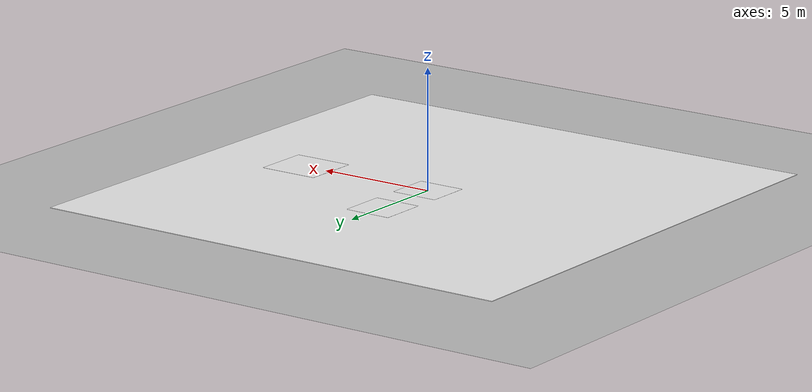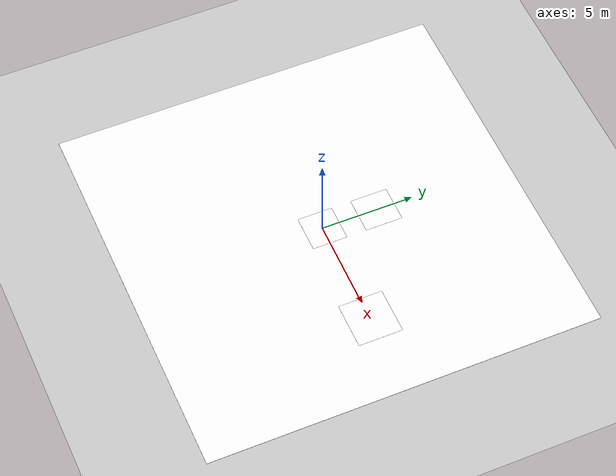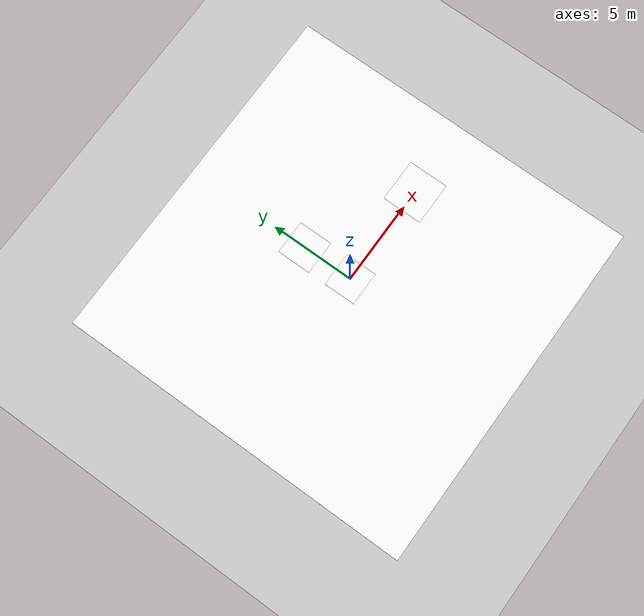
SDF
<sdf version='1.10'>
  <world name='empty_world'>
    <physics name='1ms' type='ignored'>
      <max_step_size>0.001</max_step_size>
      <real_time_factor>1</real_time_factor>
      <real_time_update_rate>1000</real_time_update_rate>
    </physics>
    <plugin name='gz::sim::systems::Physics' filename='gz-sim-physics-system'/>
    <plugin name='gz::sim::systems::UserCommands' filename='gz-sim-user-commands-system'/>
    <plugin name='gz::sim::systems::SceneBroadcaster' filename='gz-sim-scene-broadcaster-system'/>
    <plugin name='gz::sim::systems::Contact' filename='gz-sim-contact-system'/>
    <plugin name='gz::sim::systems::Sensors' filename='gz-sim-sensors-system'>
      <render_engine>ogre2</render_engine>
    </plugin>
    <plugin name='gz::sim::systems::Imu' filename='gz-sim-imu-system'/>
    <gravity>0 0 -9.8000000000000007</gravity>
    <magnetic_field>5.5644999999999998e-06 2.2875799999999999e-05 -4.2388400000000002e-05</magnetic_field>
    <atmosphere type='adiabatic'/>
    <scene>
      <ambient>0.400000006 0.400000006 0.400000006 1</ambient>
      <background>0.827000022 0.80400002 1 1</background>
      <shadows>true</shadows>
    </scene>
    <model name='ground_plane'>
      <static>true</static>
      <link name='link'>
        <collision name='collision'>
          <geometry>
            <plane>
              <normal>0 0 1</normal>
              <size>100 100</size>
            </plane>
          </geometry>
          <surface>
            <friction>
              <ode/>
            </friction>
            <bounce/>
            <contact/>
          </surface>
        </collision>
        <visual name='visual'>
          <geometry>
            <plane>
              <normal>0 0 1</normal>
              <size>100 100</size>
            </plane>
          </geometry>
          <material>
            <ambient>0.800000012 0.800000012 0.800000012 1</ambient>
            <diffuse>0.800000012 0.800000012 0.800000012 1</diffuse>
            <specular>0.800000012 0.800000012 0.800000012 1</specular>
          </material>
        </visual>
        <pose>0 0 0 0 0 0</pose>
        <inertial>
          <pose>0 0 0 0 0 0</pose>
          <mass>1</mass>
          <inertia>
            <ixx>1</ixx>
            <ixy>0</ixy>
            <ixz>0</ixz>
            <iyy>1</iyy>
            <iyz>0</iyz>
            <izz>1</izz>
          </inertia>
        </inertial>
        <enable_wind>false</enable_wind>
      </link>
      <pose>0 0 0 0 0 0</pose>
      <self_collide>false</self_collide>
    </model>

    <model name="circuit_0">
      <static>true</static>
      <pose>6 0 0.025 0 0 0</pose>

      <link name="link">
        <visual name="visual">
          <geometry>
            <plane>
              <normal>0 0 1</normal>
              <size>2.53 2.36</size>
            </plane>
          </geometry>

          <material>
            <diffuse>1 1 1 1</diffuse>
            <pbr>
              <metal>
                <albedo_map>textures/base_path.png</albedo_map>
              </metal>
            </pbr>
          </material>
        </visual>

        <collision name="collision">
          <geometry>
            <plane>
              <normal>0 0 1</normal>
              <size>2.53 2.36</size>
            </plane>
          </geometry>
        </collision>

      </link>
    </model>

    <model name="circuit_1">
      <static>true</static>
      <pose>0 0 0.025 0 0 0</pose>

      <link name="link">
        <visual name="visual">
          <geometry>
            <plane>
              <normal>0 0 1</normal>
              <size>2 1.87</size>
            </plane>
          </geometry>

          <material>
            <diffuse>1 1 1 1</diffuse>
            <pbr>
              <metal>
                <albedo_map>textures/path.png</albedo_map>
              </metal>
            </pbr>
          </material>
        </visual>

        <collision name="collision">
          <geometry>
            <plane>
              <normal>0 0 1</normal>
              <size>2 1.87</size>
            </plane>
          </geometry>
        </collision>

      </link>
    </model>

    <model name="circuit_1_redone">
      <static>true</static>
      <pose>0 3 0.025 0 0 0</pose>

      <link name="link">
        <visual name="visual">
          <geometry>
            <plane>
              <normal>0 0 1</normal>
              <size>2 2</size>
            </plane>
          </geometry>

          <material>
            <diffuse>1 1 1 1</diffuse>
            <pbr>
              <metal>
                <albedo_map>textures/fixed_path.png</albedo_map>
              </metal>
            </pbr>
          </material>
        </visual>

        <collision name="collision">
          <geometry>
            <plane>
              <normal>0 0 1</normal>
              <size>2 2</size>
            </plane>
          </geometry>
        </collision>

      </link>
    </model>

    <model name='floor'>
      <pose>0 0 0 0 0 0</pose>
      <link name='box_link'>
        <inertial>
          <inertia>
            <ixx>0.16666</ixx>
            <ixy>0</ixy>
            <ixz>0</ixz>
            <iyy>0.16666</iyy>
            <iyz>0</iyz>
            <izz>0.16666</izz>
          </inertia>
          <mass>1</mass>
          <pose>0 0 0 0 0 0</pose>
        </inertial>
        <collision name='box_collision'>
          <geometry>
            <box>
              <size>21 21 0.024</size>
            </box>
          </geometry>
          <surface>
            <friction>
              <ode/>
            </friction>
            <bounce/>
            <contact/>
          </surface>
        </collision>
        <visual name='box_visual'>
          <geometry>
            <box>
              <size>21 21 0.024</size>
            </box>
          </geometry>
          <material>
            <ambient>0.300000012 0.300000012 0.300000012 1</ambient>
            <diffuse>1 1 1 1</diffuse>
            <specular>1 1 1 1</specular>
          </material>
        </visual>
        <pose>0 0 0 0 0 0</pose>
        <enable_wind>false</enable_wind>
      </link>
      <static>true</static>
      <self_collide>false</self_collide>
    </model>

    <light name='sun' type='directional'>
      <pose>0 0 10 0 0 0</pose>
      <cast_shadows>true</cast_shadows>
      <intensity>1</intensity>
      <direction>-0.5 0.10000000000000001 -0.90000000000000002</direction>
      <diffuse>0.800000012 0.800000012 0.800000012 1</diffuse>
      <specular>0.200000003 0.200000003 0.200000003 1</specular>
      <attenuation>
        <range>1000</range>
        <linear>0.0099999997764825821</linear>
        <constant>0.89999997615814209</constant>
        <quadratic>0.0010000000474974513</quadratic>
      </attenuation>
      <spot>
        <inner_angle>0</inner_angle>
        <outer_angle>0</outer_angle>
        <falloff>0</falloff>
      </spot>
    </light>
  </world>
</sdf>
